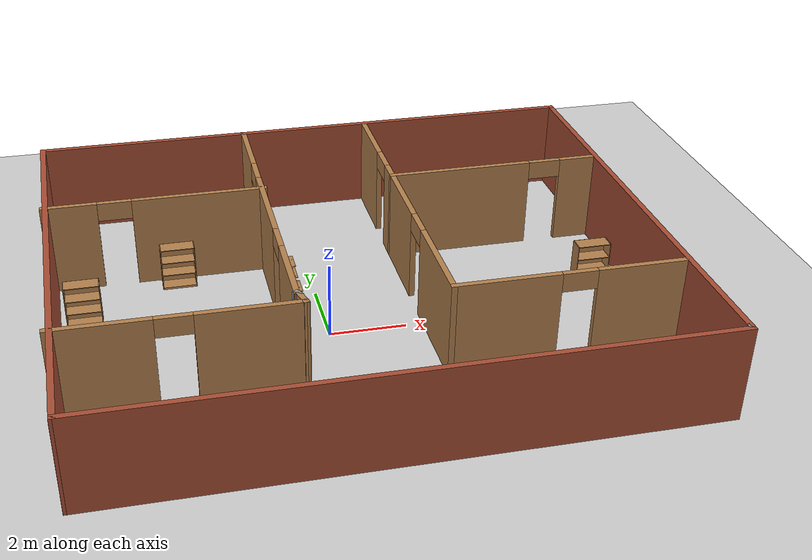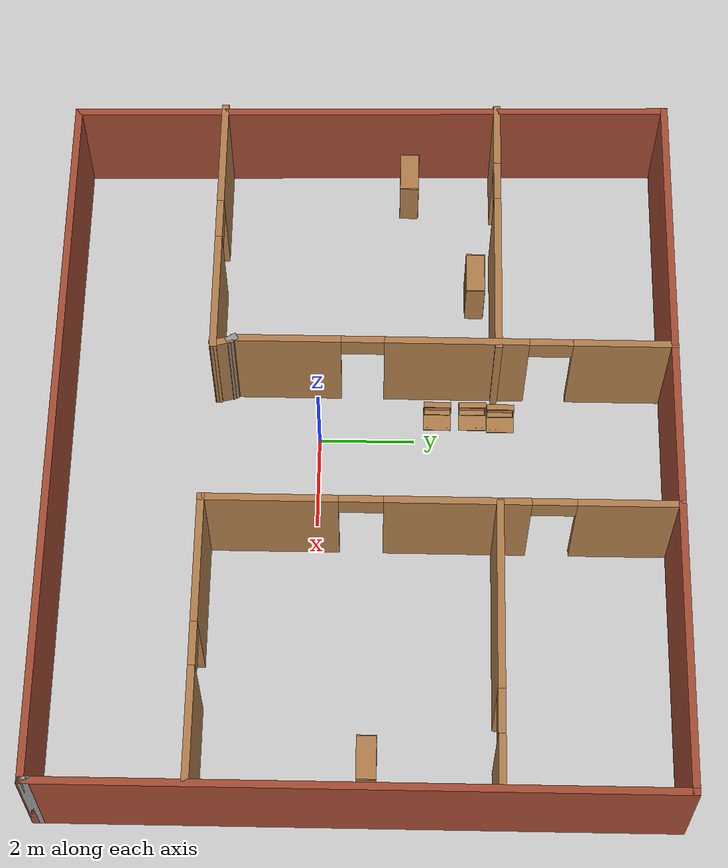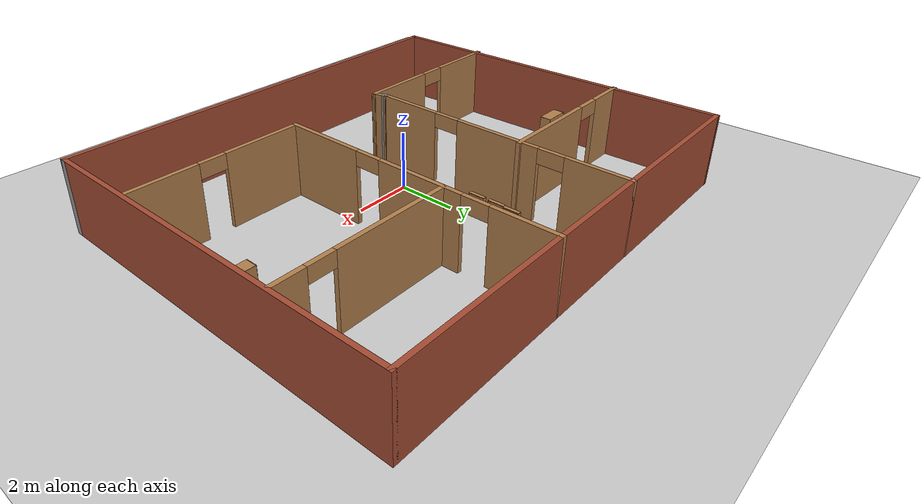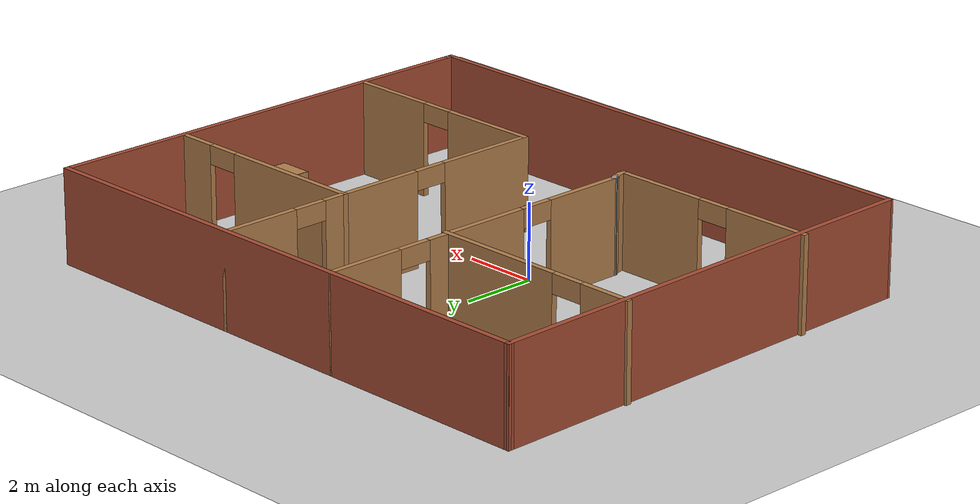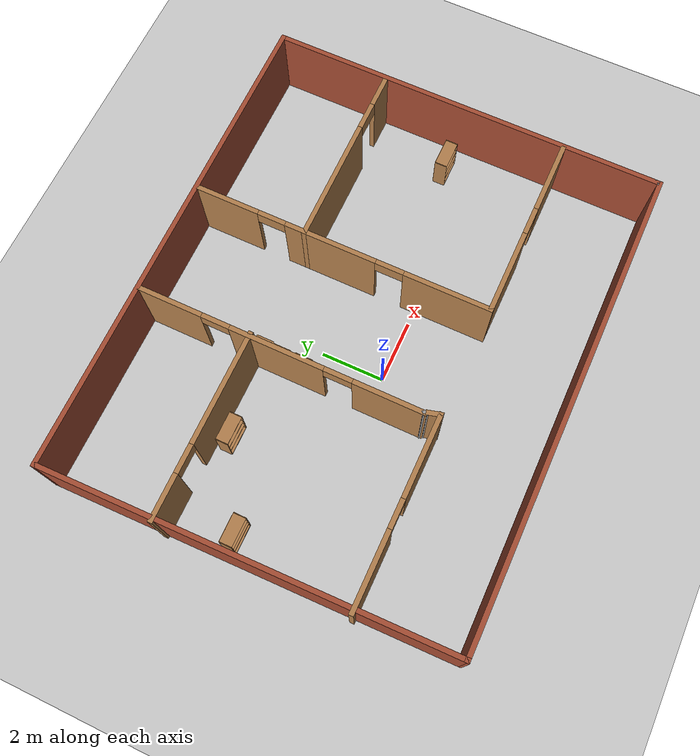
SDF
<sdf version="1.7">
 <world name="default">
  <light name="sun" type="directional">
   <pose>0 0 10 0 -0 0</pose>
   <diffuse>0.8 0.8 0.8 1</diffuse>
   <specular>0.2 0.2 0.2 1</specular>
   <attenuation>
    <range>1000</range>
    <constant>0.9</constant>
    <linear>0.01</linear>
    <quadratic>0.001</quadratic>
   </attenuation>
   <direction>-0.5 0.1 -0.9</direction>
   <spot><inner_angle>0</inner_angle><outer_angle>0</outer_angle><falloff>0</falloff></spot>
  </light>
  <model name="ground_plane">
   <static>1</static>
   <link name="link">
    <collision name="collision">
     <geometry><plane><normal>0 0 1</normal><size>100 100</size></plane></geometry>
     <surface><friction><ode><mu>100</mu><mu2>50</mu2></ode></friction></surface>
    </collision>
    <visual name="visual">
     <cast_shadows>0</cast_shadows>
     <geometry><plane><normal>0 0 1</normal><size>100 100</size></plane></geometry>
     <material>
      <script><uri>file://media/materials/scripts/gazebo.material</uri><name>Gazebo/Grey</name></script>
     </material>
    </visual>
   </link>
  </model>
  <gravity>0 0 -9.8</gravity>
  <magnetic_field>6e-06 2.3e-05 -4.2e-05</magnetic_field>
  <atmosphere type="adiabatic"/>
  <physics type="ode">
   <max_step_size>0.001</max_step_size>
   <real_time_factor>1</real_time_factor>
   <real_time_update_rate>1000</real_time_update_rate>
  </physics>
  <scene><ambient>0.4 0.4 0.4 1</ambient><background>0.7 0.7 0.7 1</background><shadows>1</shadows></scene>
  <audio><device>default</device></audio>
  <spherical_coordinates>
   <surface_model>EARTH_WGS84</surface_model>
   <latitude_deg>0</latitude_deg>
   <longitude_deg>0</longitude_deg>
   <elevation>0</elevation>
   <heading_deg>0</heading_deg>
  </spherical_coordinates>
  <model name="custom_world_1.world">
   <pose>0.77692 0.982051 0 0 -0 0</pose>
   <link name="Wall_10">
    <collision name="Wall_10_Collision">
     <geometry><box><size>0.25 0.15 2.5</size></box></geometry>
     <pose>0 0 1.25 0 -0 0</pose>
    </collision>
    <visual name="Wall_10_Visual">
     <pose>0 0 1.25 0 -0 0</pose>
     <geometry><box><size>0.25 0.15 2.5</size></box></geometry>
     <material>
      <script><uri>file://media/materials/scripts/gazebo.material</uri><name>Gazebo/Grey</name></script>
      <ambient>1 1 1 1</ambient>
     </material>
     <meta><layer>0</layer></meta>
    </visual>
    <pose>-1.86565 -2.7933 0 0 -0 -1.0472</pose>
   </link>
   <link name="Wall_11">
    <collision name="Wall_11_Collision">
     <geometry><box><size>0.5 0.15 2.5</size></box></geometry>
     <pose>0 0 1.25 0 -0 0</pose>
    </collision>
    <visual name="Wall_11_Visual">
     <pose>0 0 1.25 0 -0 0</pose>
     <geometry><box><size>0.5 0.15 2.5</size></box></geometry>
     <material>
      <script><uri>file://media/materials/scripts/gazebo.material</uri><name>Gazebo/Wood</name></script>
      <ambient>1 1 1 1</ambient>
     </material>
     <meta><layer>0</layer></meta>
    </visual>
    <pose>-1.79536 -3.00564 0 0 -0 -1.309</pose>
   </link>
   <link name="Wall_12">
    <pose>-4.67506 -3.17468 0 0 -0 3.14159</pose>
    <visual name="Wall_12_Visual_0">
     <pose>-1.67828 0 1.25 0 -0 0</pose>
     <geometry><box><size>2.64344 0.15 2.5</size></box></geometry>
     <material>
      <script><uri>file://media/materials/scripts/gazebo.material</uri><name>Gazebo/Wood</name></script>
      <ambient>1 1 1 1</ambient>
     </material>
     <meta><layer>0</layer></meta>
    </visual>
    <collision name="Wall_12_Collision_0">
     <geometry><box><size>2.64344 0.15 2.5</size></box></geometry>
     <pose>-1.67828 0 1.25 0 -0 0</pose>
    </collision>
    <visual name="Wall_12_Visual_1">
     <pose>1.77172 0 1.25 0 -0 0</pose>
     <geometry><box><size>2.45656 0.15 2.5</size></box></geometry>
     <material>
      <script><uri>file://media/materials/scripts/gazebo.material</uri><name>Gazebo/Wood</name></script>
      <ambient>1 1 1 1</ambient>
     </material>
     <meta><layer>0</layer></meta>
    </visual>
    <collision name="Wall_12_Collision_1">
     <geometry><box><size>2.45656 0.15 2.5</size></box></geometry>
     <pose>1.77172 0 1.25 0 -0 0</pose>
    </collision>
    <visual name="Wall_12_Visual_2">
     <pose>0.093437 0 2.25 0 -0 0</pose>
     <geometry><box><size>0.9 0.15 0.5</size></box></geometry>
     <material>
      <script><uri>file://media/materials/scripts/gazebo.material</uri><name>Gazebo/Wood</name></script>
      <ambient>1 1 1 1</ambient>
     </material>
     <meta><layer>0</layer></meta>
    </visual>
    <collision name="Wall_12_Collision_2">
     <geometry><box><size>0.9 0.15 0.5</size></box></geometry>
     <pose>0.093437 0 2.25 0 -0 0</pose>
    </collision>
   </link>
   <link name="Wall_14">
    <pose>1.7395 1.55 0 0 -0 -1.5708</pose>
    <visual name="Wall_14_Visual_0">
     <pose>-3.79016 0 1.25 0 -0 0</pose>
     <geometry><box><size>2.16968 0.15 2.5</size></box></geometry>
     <material>
      <script><uri>file://media/materials/scripts/gazebo.material</uri><name>Gazebo/Wood</name></script>
      <ambient>1 1 1 1</ambient>
     </material>
     <meta><layer>0</layer></meta>
    </visual>
    <collision name="Wall_14_Collision_0">
     <geometry><box><size>2.16968 0.15 2.5</size></box></geometry>
     <pose>-3.79016 0 1.25 0 -0 0</pose>
    </collision>
    <visual name="Wall_14_Visual_1">
     <pose>-0.326165 0 1.25 0 -0 0</pose>
     <geometry><box><size>2.95831 0.15 2.5</size></box></geometry>
     <material>
      <script><uri>file://media/materials/scripts/gazebo.material</uri><name>Gazebo/Wood</name></script>
      <ambient>1 1 1 1</ambient>
     </material>
     <meta><layer>0</layer></meta>
    </visual>
    <collision name="Wall_14_Collision_1">
     <geometry><box><size>2.95831 0.15 2.5</size></box></geometry>
     <pose>-0.326165 0 1.25 0 -0 0</pose>
    </collision>
    <visual name="Wall_14_Visual_2">
     <pose>3.464 0 1.25 0 -0 0</pose>
     <geometry><box><size>2.82201 0.15 2.5</size></box></geometry>
     <material>
      <script><uri>file://media/materials/scripts/gazebo.material</uri><name>Gazebo/Wood</name></script>
      <ambient>1 1 1 1</ambient>
     </material>
     <meta><layer>0</layer></meta>
    </visual>
    <collision name="Wall_14_Collision_2">
     <geometry><box><size>2.82201 0.15 2.5</size></box></geometry>
     <pose>3.464 0 1.25 0 -0 0</pose>
    </collision>
    <visual name="Wall_14_Visual_3">
     <pose>-2.25532 0 2.25 0 -0 0</pose>
     <geometry><box><size>0.9 0.15 0.5</size></box></geometry>
     <material>
      <script><uri>file://media/materials/scripts/gazebo.material</uri><name>Gazebo/Wood</name></script>
      <ambient>1 1 1 1</ambient>
     </material>
     <meta><layer>0</layer></meta>
    </visual>
    <collision name="Wall_14_Collision_3">
     <geometry><box><size>0.9 0.15 0.5</size></box></geometry>
     <pose>-2.25532 0 2.25 0 -0 0</pose>
    </collision>
    <visual name="Wall_14_Visual_4">
     <pose>1.60299 0 2.25 0 -0 0</pose>
     <geometry><box><size>0.9 0.15 0.5</size></box></geometry>
     <material>
      <script><uri>file://media/materials/scripts/gazebo.material</uri><name>Gazebo/Wood</name></script>
      <ambient>1 1 1 1</ambient>
     </material>
     <meta><layer>0</layer></meta>
    </visual>
    <collision name="Wall_14_Collision_4">
     <geometry><box><size>0.9 0.15 0.5</size></box></geometry>
     <pose>1.60299 0 2.25 0 -0 0</pose>
    </collision>
   </link>
   <link name="Wall_15">
    <pose>4.66449 -3.25 0 0 -0 0</pose>
    <visual name="Wall_15_Visual_0">
     <pose>-1.62201 0 1.25 0 -0 0</pose>
     <geometry><box><size>2.75599 0.15 2.5</size></box></geometry>
     <material>
      <script><uri>file://media/materials/scripts/gazebo.material</uri><name>Gazebo/Wood</name></script>
      <ambient>1 1 1 1</ambient>
     </material>
     <meta><layer>0</layer></meta>
    </visual>
    <collision name="Wall_15_Collision_0">
     <geometry><box><size>2.75599 0.15 2.5</size></box></geometry>
     <pose>-1.62201 0 1.25 0 -0 0</pose>
    </collision>
    <visual name="Wall_15_Visual_1">
     <pose>1.82799 0 1.25 0 -0 0</pose>
     <geometry><box><size>2.34401 0.15 2.5</size></box></geometry>
     <material>
      <script><uri>file://media/materials/scripts/gazebo.material</uri><name>Gazebo/Wood</name></script>
      <ambient>1 1 1 1</ambient>
     </material>
     <meta><layer>0</layer></meta>
    </visual>
    <collision name="Wall_15_Collision_1">
     <geometry><box><size>2.34401 0.15 2.5</size></box></geometry>
     <pose>1.82799 0 1.25 0 -0 0</pose>
    </collision>
    <visual name="Wall_15_Visual_2">
     <pose>0.205986 0 2.25 0 -0 0</pose>
     <geometry><box><size>0.9 0.15 0.5</size></box></geometry>
     <material>
      <script><uri>file://media/materials/scripts/gazebo.material</uri><name>Gazebo/Wood</name></script>
      <ambient>1 1 1 1</ambient>
     </material>
     <meta><layer>0</layer></meta>
    </visual>
    <collision name="Wall_15_Collision_2">
     <geometry><box><size>0.9 0.15 0.5</size></box></geometry>
     <pose>0.205986 0 2.25 0 -0 0</pose>
    </collision>
   </link>
   <link name="Wall_17">
    <pose>-4.74927 2.71985 0 0 -0 0</pose>
    <visual name="Wall_17_Visual_0">
     <pose>-2.2623 0 1.25 0 -0 0</pose>
     <geometry><box><size>1.47541 0.15 2.5</size></box></geometry>
     <material>
      <script><uri>file://media/materials/scripts/gazebo.material</uri><name>Gazebo/Wood</name></script>
      <ambient>1 1 1 1</ambient>
     </material>
     <meta><layer>0</layer></meta>
    </visual>
    <collision name="Wall_17_Collision_0">
     <geometry><box><size>1.47541 0.15 2.5</size></box></geometry>
     <pose>-2.2623 0 1.25 0 -0 0</pose>
    </collision>
    <visual name="Wall_17_Visual_1">
     <pose>1.1877 0 1.25 0 -0 0</pose>
     <geometry><box><size>3.62459 0.15 2.5</size></box></geometry>
     <material>
      <script><uri>file://media/materials/scripts/gazebo.material</uri><name>Gazebo/Wood</name></script>
      <ambient>1 1 1 1</ambient>
     </material>
     <meta><layer>0</layer></meta>
    </visual>
    <collision name="Wall_17_Collision_1">
     <geometry><box><size>3.62459 0.15 2.5</size></box></geometry>
     <pose>1.1877 0 1.25 0 -0 0</pose>
    </collision>
    <visual name="Wall_17_Visual_2">
     <pose>-1.07459 0 2.25 0 -0 0</pose>
     <geometry><box><size>0.9 0.15 0.5</size></box></geometry>
     <material>
      <script><uri>file://media/materials/scripts/gazebo.material</uri><name>Gazebo/Wood</name></script>
      <ambient>1 1 1 1</ambient>
     </material>
     <meta><layer>0</layer></meta>
    </visual>
    <collision name="Wall_17_Collision_2">
     <geometry><box><size>0.9 0.15 0.5</size></box></geometry>
     <pose>-1.07459 0 2.25 0 -0 0</pose>
    </collision>
   </link>
   <link name="Wall_19">
    <pose>4.66449 2.71985 0 0 -0 0</pose>
    <visual name="Wall_19_Visual_0">
     <pose>-0.988789 0 1.25 0 -0 0</pose>
     <geometry><box><size>4.02242 0.15 2.5</size></box></geometry>
     <material>
      <script><uri>file://media/materials/scripts/gazebo.material</uri><name>Gazebo/Wood</name></script>
      <ambient>1 1 1 1</ambient>
     </material>
     <meta><layer>0</layer></meta>
    </visual>
    <collision name="Wall_19_Collision_0">
     <geometry><box><size>4.02242 0.15 2.5</size></box></geometry>
     <pose>-0.988789 0 1.25 0 -0 0</pose>
    </collision>
    <visual name="Wall_19_Visual_1">
     <pose>2.46121 0 1.25 0 -0 0</pose>
     <geometry><box><size>1.07758 0.15 2.5</size></box></geometry>
     <material>
      <script><uri>file://media/materials/scripts/gazebo.material</uri><name>Gazebo/Wood</name></script>
      <ambient>1 1 1 1</ambient>
     </material>
     <meta><layer>0</layer></meta>
    </visual>
    <collision name="Wall_19_Collision_1">
     <geometry><box><size>1.07758 0.15 2.5</size></box></geometry>
     <pose>2.46121 0 1.25 0 -0 0</pose>
    </collision>
    <visual name="Wall_19_Visual_2">
     <pose>1.47242 0 2.25 0 -0 0</pose>
     <geometry><box><size>0.9 0.15 0.5</size></box></geometry>
     <material>
      <script><uri>file://media/materials/scripts/gazebo.material</uri><name>Gazebo/Wood</name></script>
      <ambient>1 1 1 1</ambient>
     </material>
     <meta><layer>0</layer></meta>
    </visual>
    <collision name="Wall_19_Collision_2">
     <geometry><box><size>0.9 0.15 0.5</size></box></geometry>
     <pose>1.47242 0 2.25 0 -0 0</pose>
    </collision>
   </link>
   <link name="Wall_2">
    <collision name="Wall_2_Collision">
     <geometry><box><size>15.5 0.15 2.5</size></box></geometry>
     <pose>0 0 1.25 0 -0 0</pose>
    </collision>
    <visual name="Wall_2_Visual">
     <pose>0 0 1.25 0 -0 0</pose>
     <geometry><box><size>15.5 0.15 2.5</size></box></geometry>
     <material>
      <script><uri>file://media/materials/scripts/gazebo.material</uri><name>Gazebo/Bricks</name></script>
      <ambient>1 1 1 1</ambient>
     </material>
     <meta><layer>0</layer></meta>
    </visual>
    <pose>0.00073 6.35 0 0 -0 0</pose>
   </link>
   <link name="Wall_3">
    <collision name="Wall_3_Collision">
     <geometry><box><size>12.75 0.15 2.5</size></box></geometry>
     <pose>0 0 1.25 0 -0 0</pose>
    </collision>
    <visual name="Wall_3_Visual">
     <pose>0 0 1.25 0 -0 0</pose>
     <geometry><box><size>12.75 0.15 2.5</size></box></geometry>
     <material>
      <script><uri>file://media/materials/scripts/gazebo.material</uri><name>Gazebo/Bricks</name></script>
      <ambient>1 1 1 1</ambient>
     </material>
     <meta><layer>0</layer></meta>
    </visual>
    <pose>7.67573 0.05 0 0 -0 -1.5708</pose>
   </link>
   <link name="Wall_4">
    <collision name="Wall_4_Collision">
     <geometry><box><size>0.15 0.15 2.5</size></box></geometry>
     <pose>0 0 1.25 0 -0 0</pose>
    </collision>
    <visual name="Wall_4_Visual">
     <pose>0 0 1.25 0 -0 0</pose>
     <geometry><box><size>0.15 0.15 2.5</size></box></geometry>
     <material>
      <script><uri>file://media/materials/scripts/gazebo.material</uri><name>Gazebo/Grey</name></script>
      <ambient>1 1 1 1</ambient>
     </material>
     <meta><layer>0</layer></meta>
    </visual>
    <pose>7.67573 -6.25 0 0 -0 0</pose>
   </link>
   <link name="Wall_5">
    <collision name="Wall_5_Collision">
     <geometry><box><size>0.25 0.15 2.5</size></box></geometry>
     <pose>0 0 1.25 0 -0 0</pose>
    </collision>
    <visual name="Wall_5_Visual">
     <pose>0 0 1.25 0 -0 0</pose>
     <geometry><box><size>0.25 0.15 2.5</size></box></geometry>
     <material>
      <script><uri>file://media/materials/scripts/gazebo.material</uri><name>Gazebo/Grey</name></script>
      <ambient>1 1 1 1</ambient>
     </material>
     <meta><layer>0</layer></meta>
    </visual>
    <pose>7.67573 -6.3 0 0 -0 -1.5708</pose>
   </link>
   <link name="Wall_6">
    <collision name="Wall_6_Collision">
     <geometry><box><size>15.25 0.15 2.5</size></box></geometry>
     <pose>0 0 1.25 0 -0 0</pose>
    </collision>
    <visual name="Wall_6_Visual">
     <pose>0 0 1.25 0 -0 0</pose>
     <geometry><box><size>15.25 0.15 2.5</size></box></geometry>
     <material>
      <script><uri>file://media/materials/scripts/gazebo.material</uri><name>Gazebo/Bricks</name></script>
      <ambient>1 1 1 1</ambient>
     </material>
     <meta><layer>0</layer></meta>
    </visual>
    <pose>0.12573 -6.35 0 0 -0 3.14159</pose>
   </link>
   <link name="Wall_7">
    <collision name="Wall_7_Collision">
     <geometry><box><size>12.8525 0.15 2.5</size></box></geometry>
     <pose>0 0 1.25 0 -0 0</pose>
    </collision>
    <visual name="Wall_7_Visual">
     <pose>0 0 1.25 0 -0 0</pose>
     <geometry><box><size>12.8525 0.15 2.5</size></box></geometry>
     <material>
      <script><uri>file://media/materials/scripts/gazebo.material</uri><name>Gazebo/Bricks</name></script>
      <ambient>1 1 1 1</ambient>
     </material>
     <meta><layer>0</layer></meta>
    </visual>
    <pose>-7.54927 -0 0 0 -0 1.59048</pose>
   </link>
   <link name="Wall_9">
    <pose>-1.89065 1.8 0 0 -0 -1.5708</pose>
    <visual name="Wall_9_Visual_0">
     <pose>-3.54016 0 1.25 0 -0 0</pose>
     <geometry><box><size>2.16968 0.15 2.5</size></box></geometry>
     <material>
      <script><uri>file://media/materials/scripts/gazebo.material</uri><name>Gazebo/Wood</name></script>
      <ambient>1 1 1 1</ambient>
     </material>
     <meta><layer>0</layer></meta>
    </visual>
    <collision name="Wall_9_Collision_0">
     <geometry><box><size>2.16968 0.15 2.5</size></box></geometry>
     <pose>-3.54016 0 1.25 0 -0 0</pose>
    </collision>
    <visual name="Wall_9_Visual_1">
     <pose>-0.058576 0 1.25 0 -0 0</pose>
     <geometry><box><size>2.99349 0.15 2.5</size></box></geometry>
     <material>
      <script><uri>file://media/materials/scripts/gazebo.material</uri><name>Gazebo/Wood</name></script>
      <ambient>1 1 1 1</ambient>
     </material>
     <meta><layer>0</layer></meta>
    </visual>
    <collision name="Wall_9_Collision_1">
     <geometry><box><size>2.99349 0.15 2.5</size></box></geometry>
     <pose>-0.058576 0 1.25 0 -0 0</pose>
    </collision>
    <visual name="Wall_9_Visual_2">
     <pose>3.48158 0 1.25 0 -0 0</pose>
     <geometry><box><size>2.28683 0.15 2.5</size></box></geometry>
     <material>
      <script><uri>file://media/materials/scripts/gazebo.material</uri><name>Gazebo/Wood</name></script>
      <ambient>1 1 1 1</ambient>
     </material>
     <meta><layer>0</layer></meta>
    </visual>
    <collision name="Wall_9_Collision_2">
     <geometry><box><size>2.28683 0.15 2.5</size></box></geometry>
     <pose>3.48158 0 1.25 0 -0 0</pose>
    </collision>
    <visual name="Wall_9_Visual_3">
     <pose>-2.00532 0 2.25 0 -0 0</pose>
     <geometry><box><size>0.9 0.15 0.5</size></box></geometry>
     <material>
      <script><uri>file://media/materials/scripts/gazebo.material</uri><name>Gazebo/Wood</name></script>
      <ambient>1 1 1 1</ambient>
     </material>
     <meta><layer>0</layer></meta>
    </visual>
    <collision name="Wall_9_Collision_3">
     <geometry><box><size>0.9 0.15 0.5</size></box></geometry>
     <pose>-2.00532 0 2.25 0 -0 0</pose>
    </collision>
    <visual name="Wall_9_Visual_4">
     <pose>1.88817 0 2.25 0 -0 0</pose>
     <geometry><box><size>0.9 0.15 0.5</size></box></geometry>
     <material>
      <script><uri>file://media/materials/scripts/gazebo.material</uri><name>Gazebo/Wood</name></script>
      <ambient>1 1 1 1</ambient>
     </material>
     <meta><layer>0</layer></meta>
    </visual>
    <collision name="Wall_9_Collision_4">
     <geometry><box><size>0.9 0.15 0.5</size></box></geometry>
     <pose>1.88817 0 2.25 0 -0 0</pose>
    </collision>
   </link>
   <static>1</static>
  </model>
  <model name="bookshelf">
   <static>1</static>
   <link name="link">
    <inertial><mass>1</mass></inertial>
    <collision name="back">
     <pose>0 0.005 0.6 0 -0 0</pose>
     <geometry><box><size>0.9 0.01 1.2</size></box></geometry>
    </collision>
    <visual name="visual1">
     <pose>0 0.005 0.6 0 -0 0</pose>
     <geometry><box><size>0.9 0.01 1.2</size></box></geometry>
     <material>
      <script><uri>file://media/materials/scripts/gazebo.material</uri><name>Gazebo/Wood</name></script>
     </material>
    </visual>
    <collision name="left_side">
     <pose>0.45 -0.195 0.6 0 -0 0</pose>
     <geometry><box><size>0.02 0.4 1.2</size></box></geometry>
    </collision>
    <visual name="visual2">
     <pose>0.45 -0.195 0.6 0 -0 0</pose>
     <geometry><box><size>0.02 0.4 1.2</size></box></geometry>
     <material>
      <script><uri>file://media/materials/scripts/gazebo.material</uri><name>Gazebo/Wood</name></script>
     </material>
    </visual>
    <collision name="right_side">
     <pose>-0.45 -0.195 0.6 0 -0 0</pose>
     <geometry><box><size>0.02 0.4 1.2</size></box></geometry>
    </collision>
    <visual name="visual3">
     <pose>-0.45 -0.195 0.6 0 -0 0</pose>
     <geometry><box><size>0.02 0.4 1.2</size></box></geometry>
     <material>
      <script><uri>file://media/materials/scripts/gazebo.material</uri><name>Gazebo/Wood</name></script>
     </material>
    </visual>
    <collision name="bottom">
     <pose>0 -0.195 0.03 0 -0 0</pose>
     <geometry><box><size>0.88 0.4 0.06</size></box></geometry>
    </collision>
    <visual name="visual4">
     <pose>0 -0.195 0.03 0 -0 0</pose>
     <geometry><box><size>0.88 0.4 0.06</size></box></geometry>
     <material>
      <script><uri>file://media/materials/scripts/gazebo.material</uri><name>Gazebo/Wood</name></script>
     </material>
    </visual>
    <collision name="top">
     <pose>0 -0.195 1.19 0 -0 0</pose>
     <geometry><box><size>0.88 0.4 0.02</size></box></geometry>
    </collision>
    <visual name="visual5">
     <pose>0 -0.195 1.19 0 -0 0</pose>
     <geometry><box><size>0.88 0.4 0.02</size></box></geometry>
     <material>
      <script><uri>file://media/materials/scripts/gazebo.material</uri><name>Gazebo/Wood</name></script>
     </material>
    </visual>
    <collision name="low_shelf">
     <pose>0 -0.195 0.43 0 -0 0</pose>
     <geometry><box><size>0.88 0.4 0.02</size></box></geometry>
    </collision>
    <visual name="visual6">
     <pose>0 -0.195 0.43 0 -0 0</pose>
     <geometry><box><size>0.88 0.4 0.02</size></box></geometry>
     <material>
      <script><uri>file://media/materials/scripts/gazebo.material</uri><name>Gazebo/Wood</name></script>
     </material>
    </visual>
    <collision name="high_shelf">
     <pose>0 -0.195 0.8 0 -0 0</pose>
     <geometry><box><size>0.88 0.4 0.02</size></box></geometry>
    </collision>
    <visual name="visual7">
     <pose>0 -0.195 0.8 0 -0 0</pose>
     <geometry><box><size>0.88 0.4 0.02</size></box></geometry>
     <material>
      <script><uri>file://media/materials/scripts/gazebo.material</uri><name>Gazebo/Wood</name></script>
     </material>
    </visual>
   </link>
   <pose>-3.52854 3.47904 0 0 -0 0</pose>
  </model>
  <model name="bookshelf_0">
   <static>1</static>
   <link name="link">
    <inertial><mass>1</mass></inertial>
    <collision name="back">
     <pose>0 0.005 0.6 0 -0 0</pose>
     <geometry><box><size>0.9 0.01 1.2</size></box></geometry>
    </collision>
    <visual name="visual1">
     <pose>0 0.005 0.6 0 -0 0</pose>
     <geometry><box><size>0.9 0.01 1.2</size></box></geometry>
     <material>
      <script><uri>file://media/materials/scripts/gazebo.material</uri><name>Gazebo/Wood</name></script>
     </material>
    </visual>
    <collision name="left_side">
     <pose>0.45 -0.195 0.6 0 -0 0</pose>
     <geometry><box><size>0.02 0.4 1.2</size></box></geometry>
    </collision>
    <visual name="visual2">
     <pose>0.45 -0.195 0.6 0 -0 0</pose>
     <geometry><box><size>0.02 0.4 1.2</size></box></geometry>
     <material>
      <script><uri>file://media/materials/scripts/gazebo.material</uri><name>Gazebo/Wood</name></script>
     </material>
    </visual>
    <collision name="right_side">
     <pose>-0.45 -0.195 0.6 0 -0 0</pose>
     <geometry><box><size>0.02 0.4 1.2</size></box></geometry>
    </collision>
    <visual name="visual3">
     <pose>-0.45 -0.195 0.6 0 -0 0</pose>
     <geometry><box><size>0.02 0.4 1.2</size></box></geometry>
     <material>
      <script><uri>file://media/materials/scripts/gazebo.material</uri><name>Gazebo/Wood</name></script>
     </material>
    </visual>
    <collision name="bottom">
     <pose>0 -0.195 0.03 0 -0 0</pose>
     <geometry><box><size>0.88 0.4 0.06</size></box></geometry>
    </collision>
    <visual name="visual4">
     <pose>0 -0.195 0.03 0 -0 0</pose>
     <geometry><box><size>0.88 0.4 0.06</size></box></geometry>
     <material>
      <script><uri>file://media/materials/scripts/gazebo.material</uri><name>Gazebo/Wood</name></script>
     </material>
    </visual>
    <collision name="top">
     <pose>0 -0.195 1.19 0 -0 0</pose>
     <geometry><box><size>0.88 0.4 0.02</size></box></geometry>
    </collision>
    <visual name="visual5">
     <pose>0 -0.195 1.19 0 -0 0</pose>
     <geometry><box><size>0.88 0.4 0.02</size></box></geometry>
     <material>
      <script><uri>file://media/materials/scripts/gazebo.material</uri><name>Gazebo/Wood</name></script>
     </material>
    </visual>
    <collision name="low_shelf">
     <pose>0 -0.195 0.43 0 -0 0</pose>
     <geometry><box><size>0.88 0.4 0.02</size></box></geometry>
    </collision>
    <visual name="visual6">
     <pose>0 -0.195 0.43 0 -0 0</pose>
     <geometry><box><size>0.88 0.4 0.02</size></box></geometry>
     <material>
      <script><uri>file://media/materials/scripts/gazebo.material</uri><name>Gazebo/Wood</name></script>
     </material>
    </visual>
    <collision name="high_shelf">
     <pose>0 -0.195 0.8 0 -0 0</pose>
     <geometry><box><size>0.88 0.4 0.02</size></box></geometry>
    </collision>
    <visual name="visual7">
     <pose>0 -0.195 0.8 0 -0 0</pose>
     <geometry><box><size>0.88 0.4 0.02</size></box></geometry>
     <material>
      <script><uri>file://media/materials/scripts/gazebo.material</uri><name>Gazebo/Wood</name></script>
     </material>
    </visual>
   </link>
   <pose>-6.09127 2.03233 0 0 -0 0</pose>
  </model>
  <model name="bookshelf_1">
   <static>1</static>
   <link name="link">
    <inertial><mass>1</mass></inertial>
    <collision name="back">
     <pose>0 0.005 0.6 0 -0 0</pose>
     <geometry><box><size>0.9 0.01 1.2</size></box></geometry>
    </collision>
    <visual name="visual1">
     <pose>0 0.005 0.6 0 -0 0</pose>
     <geometry><box><size>0.9 0.01 1.2</size></box></geometry>
     <material>
      <script><uri>file://media/materials/scripts/gazebo.material</uri><name>Gazebo/Wood</name></script>
     </material>
    </visual>
    <collision name="left_side">
     <pose>0.45 -0.195 0.6 0 -0 0</pose>
     <geometry><box><size>0.02 0.4 1.2</size></box></geometry>
    </collision>
    <visual name="visual2">
     <pose>0.45 -0.195 0.6 0 -0 0</pose>
     <geometry><box><size>0.02 0.4 1.2</size></box></geometry>
     <material>
      <script><uri>file://media/materials/scripts/gazebo.material</uri><name>Gazebo/Wood</name></script>
     </material>
    </visual>
    <collision name="right_side">
     <pose>-0.45 -0.195 0.6 0 -0 0</pose>
     <geometry><box><size>0.02 0.4 1.2</size></box></geometry>
    </collision>
    <visual name="visual3">
     <pose>-0.45 -0.195 0.6 0 -0 0</pose>
     <geometry><box><size>0.02 0.4 1.2</size></box></geometry>
     <material>
      <script><uri>file://media/materials/scripts/gazebo.material</uri><name>Gazebo/Wood</name></script>
     </material>
    </visual>
    <collision name="bottom">
     <pose>0 -0.195 0.03 0 -0 0</pose>
     <geometry><box><size>0.88 0.4 0.06</size></box></geometry>
    </collision>
    <visual name="visual4">
     <pose>0 -0.195 0.03 0 -0 0</pose>
     <geometry><box><size>0.88 0.4 0.06</size></box></geometry>
     <material>
      <script><uri>file://media/materials/scripts/gazebo.material</uri><name>Gazebo/Wood</name></script>
     </material>
    </visual>
    <collision name="top">
     <pose>0 -0.195 1.19 0 -0 0</pose>
     <geometry><box><size>0.88 0.4 0.02</size></box></geometry>
    </collision>
    <visual name="visual5">
     <pose>0 -0.195 1.19 0 -0 0</pose>
     <geometry><box><size>0.88 0.4 0.02</size></box></geometry>
     <material>
      <script><uri>file://media/materials/scripts/gazebo.material</uri><name>Gazebo/Wood</name></script>
     </material>
    </visual>
    <collision name="low_shelf">
     <pose>0 -0.195 0.43 0 -0 0</pose>
     <geometry><box><size>0.88 0.4 0.02</size></box></geometry>
    </collision>
    <visual name="visual6">
     <pose>0 -0.195 0.43 0 -0 0</pose>
     <geometry><box><size>0.88 0.4 0.02</size></box></geometry>
     <material>
      <script><uri>file://media/materials/scripts/gazebo.material</uri><name>Gazebo/Wood</name></script>
     </material>
    </visual>
    <collision name="high_shelf">
     <pose>0 -0.195 0.8 0 -0 0</pose>
     <geometry><box><size>0.88 0.4 0.02</size></box></geometry>
    </collision>
    <visual name="visual7">
     <pose>0 -0.195 0.8 0 -0 0</pose>
     <geometry><box><size>0.88 0.4 0.02</size></box></geometry>
     <material>
      <script><uri>file://media/materials/scripts/gazebo.material</uri><name>Gazebo/Wood</name></script>
     </material>
    </visual>
   </link>
   <pose>7.45854 1.31535 0 0 -0 0</pose>
  </model>
  <model name="wooden_case">
   <link name="base">
    <pose>0 0 0.024 0 -0 0</pose>
    <inertial>
     <pose>-0.022184 0 0.171592 0 -0 0</pose>
     <mass>3.96264</mass>
     <inertia>
      <ixx>0.213536</ixx>
      <ixy>0</ixy>
      <ixz>0.000779377</ixz>
      <iyy>0.0708943</iyy>
      <iyz>0</iyz>
      <izz>0.154604</izz>
     </inertia>
    </inertial>
    <collision name="collision_back">
     <pose>-0.053975 0 0.1778 0 -0 0</pose>
     <geometry><box><size>0.01905 0.5461 0.3175</size></box></geometry>
     <surface>
      <contact>
       <poissons_ratio>0.347</poissons_ratio>
       <elastic_modulus>8.8e+09</elastic_modulus>
       <ode><kp>100000</kp><kd>100</kd><max_vel>100</max_vel><min_depth>0.001</min_depth></ode>
      </contact>
      <friction>
       <torsional>
        <coefficient>1</coefficient>
        <use_patch_radius>0</use_patch_radius>
        <surface_radius>0.01</surface_radius>
       </torsional>
      </friction>
     </surface>
    </collision>
    <visual name="visual_back">
     <pose>-0.053975 0 0.1778 0 -0 0</pose>
     <geometry><box><size>0.01905 0.5461 0.3175</size></box></geometry>
     <material>
      <script><uri>file://media/materials/scripts/gazebo.material</uri><name>Gazebo/Wood</name></script>
     </material>
    </visual>
    <collision name="collision_bottom">
     <pose>0 0 0.009525 0 -0 0</pose>
     <geometry><box><size>0.127 0.5842 0.01905</size></box></geometry>
     <surface>
      <contact>
       <poissons_ratio>0.347</poissons_ratio>
       <elastic_modulus>8.8e+09</elastic_modulus>
       <ode><kp>100000</kp><kd>100</kd><max_vel>100</max_vel><min_depth>0.001</min_depth></ode>
      </contact>
      <friction>
       <torsional>
        <coefficient>1</coefficient>
        <use_patch_radius>0</use_patch_radius>
        <surface_radius>0.01</surface_radius>
       </torsional>
      </friction>
     </surface>
    </collision>
    <visual name="visual_bottom">
     <pose>0 0 0.009525 0 -0 0</pose>
     <geometry><box><size>0.127 0.5842 0.01905</size></box></geometry>
     <material>
      <script><uri>file://media/materials/scripts/gazebo.material</uri><name>Gazebo/Wood</name></script>
     </material>
    </visual>
    <collision name="collision_top">
     <pose>0 0 0.346075 0 -0 0</pose>
     <geometry><box><size>0.127 0.5842 0.01905</size></box></geometry>
     <surface>
      <contact>
       <poissons_ratio>0.347</poissons_ratio>
       <elastic_modulus>8.8e+09</elastic_modulus>
       <ode><kp>100000</kp><kd>100</kd><max_vel>100</max_vel><min_depth>0.001</min_depth></ode>
      </contact>
      <friction>
       <torsional>
        <coefficient>1</coefficient>
        <use_patch_radius>0</use_patch_radius>
        <surface_radius>0.01</surface_radius>
       </torsional>
      </friction>
     </surface>
    </collision>
    <visual name="visual_top">
     <pose>0 0 0.346075 0 -0 0</pose>
     <geometry><box><size>0.127 0.5842 0.01905</size></box></geometry>
     <material>
      <script><uri>file://media/materials/scripts/gazebo.material</uri><name>Gazebo/Wood</name></script>
     </material>
    </visual>
    <collision name="collision_left">
     <pose>0 -0.282575 0.1778 0 -0 0</pose>
     <geometry><box><size>0.127 0.01905 0.3175</size></box></geometry>
     <surface>
      <contact>
       <poissons_ratio>0.347</poissons_ratio>
       <elastic_modulus>8.8e+09</elastic_modulus>
       <ode><kp>100000</kp><kd>100</kd><max_vel>100</max_vel><min_depth>0.001</min_depth></ode>
      </contact>
      <friction>
       <torsional>
        <coefficient>1</coefficient>
        <use_patch_radius>0</use_patch_radius>
        <surface_radius>0.01</surface_radius>
       </torsional>
      </friction>
     </surface>
    </collision>
    <visual name="visual_left">
     <pose>0 -0.282575 0.1778 0 -0 0</pose>
     <geometry><box><size>0.127 0.01905 0.3175</size></box></geometry>
     <material>
      <script><uri>file://media/materials/scripts/gazebo.material</uri><name>Gazebo/Wood</name></script>
     </material>
    </visual>
    <collision name="collision_right">
     <pose>0 0.282575 0.1778 0 -0 0</pose>
     <geometry><box><size>0.127 0.01905 0.3175</size></box></geometry>
     <surface>
      <contact>
       <poissons_ratio>0.347</poissons_ratio>
       <elastic_modulus>8.8e+09</elastic_modulus>
       <ode><kp>100000</kp><kd>100</kd><max_vel>100</max_vel><min_depth>0.001</min_depth></ode>
      </contact>
      <friction>
       <torsional>
        <coefficient>1</coefficient>
        <use_patch_radius>0</use_patch_radius>
        <surface_radius>0.01</surface_radius>
       </torsional>
      </friction>
     </surface>
    </collision>
    <visual name="visual_right">
     <pose>0 0.282575 0.1778 0 -0 0</pose>
     <geometry><box><size>0.127 0.01905 0.3175</size></box></geometry>
     <material>
      <script><uri>file://media/materials/scripts/gazebo.material</uri><name>Gazebo/Wood</name></script>
     </material>
    </visual>
    <collision name="collision_block_left">
     <pose>0.0095 -0.2151 -0.012 0 -0 0</pose>
     <geometry><box><size>0.108 0.05 0.024</size></box></geometry>
     <surface>
      <contact>
       <poissons_ratio>0.347</poissons_ratio>
       <elastic_modulus>8.8e+09</elastic_modulus>
       <ode><kp>100000</kp><kd>100</kd><max_vel>100</max_vel><min_depth>0.001</min_depth></ode>
      </contact>
      <friction>
       <torsional>
        <coefficient>1</coefficient>
        <use_patch_radius>0</use_patch_radius>
        <surface_radius>0.01</surface_radius>
       </torsional>
      </friction>
     </surface>
    </collision>
    <visual name="visual_block_left">
     <pose>0.0095 -0.2151 -0.012 0 -0 0</pose>
     <geometry><box><size>0.108 0.05 0.024</size></box></geometry>
     <material>
      <script><uri>file://media/materials/scripts/gazebo.material</uri><name>Gazebo/Wood</name></script>
     </material>
    </visual>
    <collision name="collision_block_right">
     <pose>0.0095 0.2151 -0.012 0 -0 0</pose>
     <geometry><box><size>0.108 0.05 0.024</size></box></geometry>
     <surface>
      <contact>
       <poissons_ratio>0.347</poissons_ratio>
       <elastic_modulus>8.8e+09</elastic_modulus>
       <ode><kp>100000</kp><kd>100</kd><max_vel>100</max_vel><min_depth>0.001</min_depth></ode>
      </contact>
      <friction>
       <torsional>
        <coefficient>1</coefficient>
        <use_patch_radius>0</use_patch_radius>
        <surface_radius>0.01</surface_radius>
       </torsional>
      </friction>
     </surface>
    </collision>
    <visual name="visual_block_right">
     <pose>0.0095 0.2151 -0.012 0 -0 0</pose>
     <geometry><box><size>0.108 0.05 0.024</size></box></geometry>
     <material>
      <script><uri>file://media/materials/scripts/gazebo.material</uri><name>Gazebo/Wood</name></script>
     </material>
    </visual>
   </link>
   <link name="lid">
    <pose>0.243775 0 0.009525 0 -0 0</pose>
    <inertial>
     <mass>1.97874</mass>
     <inertia>
      <ixx>0.0563367</ixx>
      <ixy>0</ixy>
      <ixz>0</ixz>
      <iyy>0.020911</iyy>
      <iyz>0</iyz>
      <izz>0.0771281</izz>
     </inertia>
    </inertial>
    <collision name="collision">
     <geometry><box><size>0.3556 0.5842 0.01905</size></box></geometry>
     <surface>
      <contact>
       <poissons_ratio>0.347</poissons_ratio>
       <elastic_modulus>8.8e+09</elastic_modulus>
       <ode><kp>100000</kp><kd>100</kd><max_vel>100</max_vel><min_depth>0.001</min_depth></ode>
      </contact>
      <friction>
       <torsional>
        <coefficient>1</coefficient>
        <use_patch_radius>0</use_patch_radius>
        <surface_radius>0.01</surface_radius>
       </torsional>
      </friction>
     </surface>
    </collision>
    <visual name="visual">
     <geometry><box><size>0.3556 0.5842 0.01905</size></box></geometry>
     <material>
      <script><uri>file://media/materials/scripts/gazebo.material</uri><name>Gazebo/Wood</name></script>
     </material>
    </visual>
    <visual name="tee_nut_1">
     <pose>0.122 -0.216 0 0 -0 0</pose>
     <geometry><cylinder><radius>0.00635</radius><length>0.0192405</length></cylinder></geometry>
     <material>
      <script><uri>file://media/materials/scripts/gazebo.material</uri><name>Gazebo/Grey</name></script>
     </material>
    </visual>
    <visual name="tee_nut_2">
     <pose>0.122 -0.088 0 0 -0 0</pose>
     <geometry><cylinder><radius>0.00635</radius><length>0.0192405</length></cylinder></geometry>
     <material>
      <script><uri>file://media/materials/scripts/gazebo.material</uri><name>Gazebo/Grey</name></script>
     </material>
    </visual>
    <visual name="tee_nut_3">
     <pose>0.122 0.088 0 0 -0 0</pose>
     <geometry><cylinder><radius>0.00635</radius><length>0.0192405</length></cylinder></geometry>
     <material>
      <script><uri>file://media/materials/scripts/gazebo.material</uri><name>Gazebo/Grey</name></script>
     </material>
    </visual>
    <visual name="tee_nut_4">
     <pose>0.122 0.216 0 0 -0 0</pose>
     <geometry><cylinder><radius>0.00635</radius><length>0.0192405</length></cylinder></geometry>
     <material>
      <script><uri>file://media/materials/scripts/gazebo.material</uri><name>Gazebo/Grey</name></script>
     </material>
    </visual>
   </link>
   <joint name="lid_hinge" type="revolute">
    <pose>-0.1778 0 0.01905 0 -0 0</pose>
    <parent>base</parent>
    <child>lid</child>
    <axis>
     <xyz>0 1 0</xyz>
     <limit><upper>0.523599</upper><lower>-1.5708</lower></limit>
     <dynamics><spring_reference>0</spring_reference><spring_stiffness>0</spring_stiffness></dynamics>
    </axis>
   </joint>
   <pose>-0.6878 3.84527 -0.001057 0 -0.000429 0</pose>
  </model>
  <model name="wooden_case_0">
   <link name="base">
    <pose>0 0 0.024 0 -0 0</pose>
    <inertial>
     <pose>-0.022184 0 0.171592 0 -0 0</pose>
     <mass>3.96264</mass>
     <inertia>
      <ixx>0.213536</ixx>
      <ixy>0</ixy>
      <ixz>0.000779377</ixz>
      <iyy>0.0708943</iyy>
      <iyz>0</iyz>
      <izz>0.154604</izz>
     </inertia>
    </inertial>
    <collision name="collision_back">
     <pose>-0.053975 0 0.1778 0 -0 0</pose>
     <geometry><box><size>0.01905 0.5461 0.3175</size></box></geometry>
     <surface>
      <contact>
       <poissons_ratio>0.347</poissons_ratio>
       <elastic_modulus>8.8e+09</elastic_modulus>
       <ode><kp>100000</kp><kd>100</kd><max_vel>100</max_vel><min_depth>0.001</min_depth></ode>
      </contact>
      <friction>
       <torsional>
        <coefficient>1</coefficient>
        <use_patch_radius>0</use_patch_radius>
        <surface_radius>0.01</surface_radius>
       </torsional>
      </friction>
     </surface>
    </collision>
    <visual name="visual_back">
     <pose>-0.053975 0 0.1778 0 -0 0</pose>
     <geometry><box><size>0.01905 0.5461 0.3175</size></box></geometry>
     <material>
      <script><uri>file://media/materials/scripts/gazebo.material</uri><name>Gazebo/Wood</name></script>
     </material>
    </visual>
    <collision name="collision_bottom">
     <pose>0 0 0.009525 0 -0 0</pose>
     <geometry><box><size>0.127 0.5842 0.01905</size></box></geometry>
     <surface>
      <contact>
       <poissons_ratio>0.347</poissons_ratio>
       <elastic_modulus>8.8e+09</elastic_modulus>
       <ode><kp>100000</kp><kd>100</kd><max_vel>100</max_vel><min_depth>0.001</min_depth></ode>
      </contact>
      <friction>
       <torsional>
        <coefficient>1</coefficient>
        <use_patch_radius>0</use_patch_radius>
        <surface_radius>0.01</surface_radius>
       </torsional>
      </friction>
     </surface>
    </collision>
    <visual name="visual_bottom">
     <pose>0 0 0.009525 0 -0 0</pose>
     <geometry><box><size>0.127 0.5842 0.01905</size></box></geometry>
     <material>
      <script><uri>file://media/materials/scripts/gazebo.material</uri><name>Gazebo/Wood</name></script>
     </material>
    </visual>
    <collision name="collision_top">
     <pose>0 0 0.346075 0 -0 0</pose>
     <geometry><box><size>0.127 0.5842 0.01905</size></box></geometry>
     <surface>
      <contact>
       <poissons_ratio>0.347</poissons_ratio>
       <elastic_modulus>8.8e+09</elastic_modulus>
       <ode><kp>100000</kp><kd>100</kd><max_vel>100</max_vel><min_depth>0.001</min_depth></ode>
      </contact>
      <friction>
       <torsional>
        <coefficient>1</coefficient>
        <use_patch_radius>0</use_patch_radius>
        <surface_radius>0.01</surface_radius>
       </torsional>
      </friction>
     </surface>
    </collision>
    <visual name="visual_top">
     <pose>0 0 0.346075 0 -0 0</pose>
     <geometry><box><size>0.127 0.5842 0.01905</size></box></geometry>
     <material>
      <script><uri>file://media/materials/scripts/gazebo.material</uri><name>Gazebo/Wood</name></script>
     </material>
    </visual>
    <collision name="collision_left">
     <pose>0 -0.282575 0.1778 0 -0 0</pose>
     <geometry><box><size>0.127 0.01905 0.3175</size></box></geometry>
     <surface>
      <contact>
       <poissons_ratio>0.347</poissons_ratio>
       <elastic_modulus>8.8e+09</elastic_modulus>
       <ode><kp>100000</kp><kd>100</kd><max_vel>100</max_vel><min_depth>0.001</min_depth></ode>
      </contact>
      <friction>
       <torsional>
        <coefficient>1</coefficient>
        <use_patch_radius>0</use_patch_radius>
        <surface_radius>0.01</surface_radius>
       </torsional>
      </friction>
     </surface>
    </collision>
    <visual name="visual_left">
     <pose>0 -0.282575 0.1778 0 -0 0</pose>
     <geometry><box><size>0.127 0.01905 0.3175</size></box></geometry>
     <material>
      <script><uri>file://media/materials/scripts/gazebo.material</uri><name>Gazebo/Wood</name></script>
     </material>
    </visual>
    <collision name="collision_right">
     <pose>0 0.282575 0.1778 0 -0 0</pose>
     <geometry><box><size>0.127 0.01905 0.3175</size></box></geometry>
     <surface>
      <contact>
       <poissons_ratio>0.347</poissons_ratio>
       <elastic_modulus>8.8e+09</elastic_modulus>
       <ode><kp>100000</kp><kd>100</kd><max_vel>100</max_vel><min_depth>0.001</min_depth></ode>
      </contact>
      <friction>
       <torsional>
        <coefficient>1</coefficient>
        <use_patch_radius>0</use_patch_radius>
        <surface_radius>0.01</surface_radius>
       </torsional>
      </friction>
     </surface>
    </collision>
    <visual name="visual_right">
     <pose>0 0.282575 0.1778 0 -0 0</pose>
     <geometry><box><size>0.127 0.01905 0.3175</size></box></geometry>
     <material>
      <script><uri>file://media/materials/scripts/gazebo.material</uri><name>Gazebo/Wood</name></script>
     </material>
    </visual>
    <collision name="collision_block_left">
     <pose>0.0095 -0.2151 -0.012 0 -0 0</pose>
     <geometry><box><size>0.108 0.05 0.024</size></box></geometry>
     <surface>
      <contact>
       <poissons_ratio>0.347</poissons_ratio>
       <elastic_modulus>8.8e+09</elastic_modulus>
       <ode><kp>100000</kp><kd>100</kd><max_vel>100</max_vel><min_depth>0.001</min_depth></ode>
      </contact>
      <friction>
       <torsional>
        <coefficient>1</coefficient>
        <use_patch_radius>0</use_patch_radius>
        <surface_radius>0.01</surface_radius>
       </torsional>
      </friction>
     </surface>
    </collision>
    <visual name="visual_block_left">
     <pose>0.0095 -0.2151 -0.012 0 -0 0</pose>
     <geometry><box><size>0.108 0.05 0.024</size></box></geometry>
     <material>
      <script><uri>file://media/materials/scripts/gazebo.material</uri><name>Gazebo/Wood</name></script>
     </material>
    </visual>
    <collision name="collision_block_right">
     <pose>0.0095 0.2151 -0.012 0 -0 0</pose>
     <geometry><box><size>0.108 0.05 0.024</size></box></geometry>
     <surface>
      <contact>
       <poissons_ratio>0.347</poissons_ratio>
       <elastic_modulus>8.8e+09</elastic_modulus>
       <ode><kp>100000</kp><kd>100</kd><max_vel>100</max_vel><min_depth>0.001</min_depth></ode>
      </contact>
      <friction>
       <torsional>
        <coefficient>1</coefficient>
        <use_patch_radius>0</use_patch_radius>
        <surface_radius>0.01</surface_radius>
       </torsional>
      </friction>
     </surface>
    </collision>
    <visual name="visual_block_right">
     <pose>0.0095 0.2151 -0.012 0 -0 0</pose>
     <geometry><box><size>0.108 0.05 0.024</size></box></geometry>
     <material>
      <script><uri>file://media/materials/scripts/gazebo.material</uri><name>Gazebo/Wood</name></script>
     </material>
    </visual>
   </link>
   <link name="lid">
    <pose>0.243775 0 0.009525 0 -0 0</pose>
    <inertial>
     <mass>1.97874</mass>
     <inertia>
      <ixx>0.0563367</ixx>
      <ixy>0</ixy>
      <ixz>0</ixz>
      <iyy>0.020911</iyy>
      <iyz>0</iyz>
      <izz>0.0771281</izz>
     </inertia>
    </inertial>
    <collision name="collision">
     <geometry><box><size>0.3556 0.5842 0.01905</size></box></geometry>
     <surface>
      <contact>
       <poissons_ratio>0.347</poissons_ratio>
       <elastic_modulus>8.8e+09</elastic_modulus>
       <ode><kp>100000</kp><kd>100</kd><max_vel>100</max_vel><min_depth>0.001</min_depth></ode>
      </contact>
      <friction>
       <torsional>
        <coefficient>1</coefficient>
        <use_patch_radius>0</use_patch_radius>
        <surface_radius>0.01</surface_radius>
       </torsional>
      </friction>
     </surface>
    </collision>
    <visual name="visual">
     <geometry><box><size>0.3556 0.5842 0.01905</size></box></geometry>
     <material>
      <script><uri>file://media/materials/scripts/gazebo.material</uri><name>Gazebo/Wood</name></script>
     </material>
    </visual>
    <visual name="tee_nut_1">
     <pose>0.122 -0.216 0 0 -0 0</pose>
     <geometry><cylinder><radius>0.00635</radius><length>0.0192405</length></cylinder></geometry>
     <material>
      <script><uri>file://media/materials/scripts/gazebo.material</uri><name>Gazebo/Grey</name></script>
     </material>
    </visual>
    <visual name="tee_nut_2">
     <pose>0.122 -0.088 0 0 -0 0</pose>
     <geometry><cylinder><radius>0.00635</radius><length>0.0192405</length></cylinder></geometry>
     <material>
      <script><uri>file://media/materials/scripts/gazebo.material</uri><name>Gazebo/Grey</name></script>
     </material>
    </visual>
    <visual name="tee_nut_3">
     <pose>0.122 0.088 0 0 -0 0</pose>
     <geometry><cylinder><radius>0.00635</radius><length>0.0192405</length></cylinder></geometry>
     <material>
      <script><uri>file://media/materials/scripts/gazebo.material</uri><name>Gazebo/Grey</name></script>
     </material>
    </visual>
    <visual name="tee_nut_4">
     <pose>0.122 0.216 0 0 -0 0</pose>
     <geometry><cylinder><radius>0.00635</radius><length>0.0192405</length></cylinder></geometry>
     <material>
      <script><uri>file://media/materials/scripts/gazebo.material</uri><name>Gazebo/Grey</name></script>
     </material>
    </visual>
   </link>
   <joint name="lid_hinge" type="revolute">
    <pose>-0.1778 0 0.01905 0 -0 0</pose>
    <parent>base</parent>
    <child>lid</child>
    <axis>
     <xyz>0 1 0</xyz>
     <limit><upper>0.523599</upper><lower>-1.5708</lower></limit>
     <dynamics><spring_reference>0</spring_reference><spring_stiffness>0</spring_stiffness></dynamics>
    </axis>
   </joint>
   <pose>-0.730097 3.24684 -0.001057 0 -0.000429 0</pose>
  </model>
  <model name="wooden_case_1">
   <link name="base">
    <pose>0 0 0.024 0 -0 0</pose>
    <inertial>
     <pose>-0.022184 0 0.171592 0 -0 0</pose>
     <mass>3.96264</mass>
     <inertia>
      <ixx>0.213536</ixx>
      <ixy>0</ixy>
      <ixz>0.000779377</ixz>
      <iyy>0.0708943</iyy>
      <iyz>0</iyz>
      <izz>0.154604</izz>
     </inertia>
    </inertial>
    <collision name="collision_back">
     <pose>-0.053975 0 0.1778 0 -0 0</pose>
     <geometry><box><size>0.01905 0.5461 0.3175</size></box></geometry>
     <surface>
      <contact>
       <poissons_ratio>0.347</poissons_ratio>
       <elastic_modulus>8.8e+09</elastic_modulus>
       <ode><kp>100000</kp><kd>100</kd><max_vel>100</max_vel><min_depth>0.001</min_depth></ode>
      </contact>
      <friction>
       <torsional>
        <coefficient>1</coefficient>
        <use_patch_radius>0</use_patch_radius>
        <surface_radius>0.01</surface_radius>
       </torsional>
      </friction>
     </surface>
    </collision>
    <visual name="visual_back">
     <pose>-0.053975 0 0.1778 0 -0 0</pose>
     <geometry><box><size>0.01905 0.5461 0.3175</size></box></geometry>
     <material>
      <script><uri>file://media/materials/scripts/gazebo.material</uri><name>Gazebo/Wood</name></script>
     </material>
    </visual>
    <collision name="collision_bottom">
     <pose>0 0 0.009525 0 -0 0</pose>
     <geometry><box><size>0.127 0.5842 0.01905</size></box></geometry>
     <surface>
      <contact>
       <poissons_ratio>0.347</poissons_ratio>
       <elastic_modulus>8.8e+09</elastic_modulus>
       <ode><kp>100000</kp><kd>100</kd><max_vel>100</max_vel><min_depth>0.001</min_depth></ode>
      </contact>
      <friction>
       <torsional>
        <coefficient>1</coefficient>
        <use_patch_radius>0</use_patch_radius>
        <surface_radius>0.01</surface_radius>
       </torsional>
      </friction>
     </surface>
    </collision>
    <visual name="visual_bottom">
     <pose>0 0 0.009525 0 -0 0</pose>
     <geometry><box><size>0.127 0.5842 0.01905</size></box></geometry>
     <material>
      <script><uri>file://media/materials/scripts/gazebo.material</uri><name>Gazebo/Wood</name></script>
     </material>
    </visual>
    <collision name="collision_top">
     <pose>0 0 0.346075 0 -0 0</pose>
     <geometry><box><size>0.127 0.5842 0.01905</size></box></geometry>
     <surface>
      <contact>
       <poissons_ratio>0.347</poissons_ratio>
       <elastic_modulus>8.8e+09</elastic_modulus>
       <ode><kp>100000</kp><kd>100</kd><max_vel>100</max_vel><min_depth>0.001</min_depth></ode>
      </contact>
      <friction>
       <torsional>
        <coefficient>1</coefficient>
        <use_patch_radius>0</use_patch_radius>
        <surface_radius>0.01</surface_radius>
       </torsional>
      </friction>
     </surface>
    </collision>
    <visual name="visual_top">
     <pose>0 0 0.346075 0 -0 0</pose>
     <geometry><box><size>0.127 0.5842 0.01905</size></box></geometry>
     <material>
      <script><uri>file://media/materials/scripts/gazebo.material</uri><name>Gazebo/Wood</name></script>
     </material>
    </visual>
    <collision name="collision_left">
     <pose>0 -0.282575 0.1778 0 -0 0</pose>
     <geometry><box><size>0.127 0.01905 0.3175</size></box></geometry>
     <surface>
      <contact>
       <poissons_ratio>0.347</poissons_ratio>
       <elastic_modulus>8.8e+09</elastic_modulus>
       <ode><kp>100000</kp><kd>100</kd><max_vel>100</max_vel><min_depth>0.001</min_depth></ode>
      </contact>
      <friction>
       <torsional>
        <coefficient>1</coefficient>
        <use_patch_radius>0</use_patch_radius>
        <surface_radius>0.01</surface_radius>
       </torsional>
      </friction>
     </surface>
    </collision>
    <visual name="visual_left">
     <pose>0 -0.282575 0.1778 0 -0 0</pose>
     <geometry><box><size>0.127 0.01905 0.3175</size></box></geometry>
     <material>
      <script><uri>file://media/materials/scripts/gazebo.material</uri><name>Gazebo/Wood</name></script>
     </material>
    </visual>
    <collision name="collision_right">
     <pose>0 0.282575 0.1778 0 -0 0</pose>
     <geometry><box><size>0.127 0.01905 0.3175</size></box></geometry>
     <surface>
      <contact>
       <poissons_ratio>0.347</poissons_ratio>
       <elastic_modulus>8.8e+09</elastic_modulus>
       <ode><kp>100000</kp><kd>100</kd><max_vel>100</max_vel><min_depth>0.001</min_depth></ode>
      </contact>
      <friction>
       <torsional>
        <coefficient>1</coefficient>
        <use_patch_radius>0</use_patch_radius>
        <surface_radius>0.01</surface_radius>
       </torsional>
      </friction>
     </surface>
    </collision>
    <visual name="visual_right">
     <pose>0 0.282575 0.1778 0 -0 0</pose>
     <geometry><box><size>0.127 0.01905 0.3175</size></box></geometry>
     <material>
      <script><uri>file://media/materials/scripts/gazebo.material</uri><name>Gazebo/Wood</name></script>
     </material>
    </visual>
    <collision name="collision_block_left">
     <pose>0.0095 -0.2151 -0.012 0 -0 0</pose>
     <geometry><box><size>0.108 0.05 0.024</size></box></geometry>
     <surface>
      <contact>
       <poissons_ratio>0.347</poissons_ratio>
       <elastic_modulus>8.8e+09</elastic_modulus>
       <ode><kp>100000</kp><kd>100</kd><max_vel>100</max_vel><min_depth>0.001</min_depth></ode>
      </contact>
      <friction>
       <torsional>
        <coefficient>1</coefficient>
        <use_patch_radius>0</use_patch_radius>
        <surface_radius>0.01</surface_radius>
       </torsional>
      </friction>
     </surface>
    </collision>
    <visual name="visual_block_left">
     <pose>0.0095 -0.2151 -0.012 0 -0 0</pose>
     <geometry><box><size>0.108 0.05 0.024</size></box></geometry>
     <material>
      <script><uri>file://media/materials/scripts/gazebo.material</uri><name>Gazebo/Wood</name></script>
     </material>
    </visual>
    <collision name="collision_block_right">
     <pose>0.0095 0.2151 -0.012 0 -0 0</pose>
     <geometry><box><size>0.108 0.05 0.024</size></box></geometry>
     <surface>
      <contact>
       <poissons_ratio>0.347</poissons_ratio>
       <elastic_modulus>8.8e+09</elastic_modulus>
       <ode><kp>100000</kp><kd>100</kd><max_vel>100</max_vel><min_depth>0.001</min_depth></ode>
      </contact>
      <friction>
       <torsional>
        <coefficient>1</coefficient>
        <use_patch_radius>0</use_patch_radius>
        <surface_radius>0.01</surface_radius>
       </torsional>
      </friction>
     </surface>
    </collision>
    <visual name="visual_block_right">
     <pose>0.0095 0.2151 -0.012 0 -0 0</pose>
     <geometry><box><size>0.108 0.05 0.024</size></box></geometry>
     <material>
      <script><uri>file://media/materials/scripts/gazebo.material</uri><name>Gazebo/Wood</name></script>
     </material>
    </visual>
   </link>
   <link name="lid">
    <pose>0.243775 0 0.009525 0 -0 0</pose>
    <inertial>
     <mass>1.97874</mass>
     <inertia>
      <ixx>0.0563367</ixx>
      <ixy>0</ixy>
      <ixz>0</ixz>
      <iyy>0.020911</iyy>
      <iyz>0</iyz>
      <izz>0.0771281</izz>
     </inertia>
    </inertial>
    <collision name="collision">
     <geometry><box><size>0.3556 0.5842 0.01905</size></box></geometry>
     <surface>
      <contact>
       <poissons_ratio>0.347</poissons_ratio>
       <elastic_modulus>8.8e+09</elastic_modulus>
       <ode><kp>100000</kp><kd>100</kd><max_vel>100</max_vel><min_depth>0.001</min_depth></ode>
      </contact>
      <friction>
       <torsional>
        <coefficient>1</coefficient>
        <use_patch_radius>0</use_patch_radius>
        <surface_radius>0.01</surface_radius>
       </torsional>
      </friction>
     </surface>
    </collision>
    <visual name="visual">
     <geometry><box><size>0.3556 0.5842 0.01905</size></box></geometry>
     <material>
      <script><uri>file://media/materials/scripts/gazebo.material</uri><name>Gazebo/Wood</name></script>
     </material>
    </visual>
    <visual name="tee_nut_1">
     <pose>0.122 -0.216 0 0 -0 0</pose>
     <geometry><cylinder><radius>0.00635</radius><length>0.0192405</length></cylinder></geometry>
     <material>
      <script><uri>file://media/materials/scripts/gazebo.material</uri><name>Gazebo/Grey</name></script>
     </material>
    </visual>
    <visual name="tee_nut_2">
     <pose>0.122 -0.088 0 0 -0 0</pose>
     <geometry><cylinder><radius>0.00635</radius><length>0.0192405</length></cylinder></geometry>
     <material>
      <script><uri>file://media/materials/scripts/gazebo.material</uri><name>Gazebo/Grey</name></script>
     </material>
    </visual>
    <visual name="tee_nut_3">
     <pose>0.122 0.088 0 0 -0 0</pose>
     <geometry><cylinder><radius>0.00635</radius><length>0.0192405</length></cylinder></geometry>
     <material>
      <script><uri>file://media/materials/scripts/gazebo.material</uri><name>Gazebo/Grey</name></script>
     </material>
    </visual>
    <visual name="tee_nut_4">
     <pose>0.122 0.216 0 0 -0 0</pose>
     <geometry><cylinder><radius>0.00635</radius><length>0.0192405</length></cylinder></geometry>
     <material>
      <script><uri>file://media/materials/scripts/gazebo.material</uri><name>Gazebo/Grey</name></script>
     </material>
    </visual>
   </link>
   <joint name="lid_hinge" type="revolute">
    <pose>-0.1778 0 0.01905 0 -0 0</pose>
    <parent>base</parent>
    <child>lid</child>
    <axis>
     <xyz>0 1 0</xyz>
     <limit><upper>0.523599</upper><lower>-1.5708</lower></limit>
     <dynamics><spring_reference>0</spring_reference><spring_stiffness>0</spring_stiffness></dynamics>
    </axis>
   </joint>
   <pose>-0.722839 2.50027 -0.001057 0 -0.000429 0</pose>
  </model>
 </world>
</sdf>
